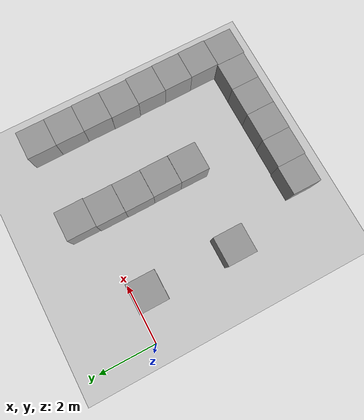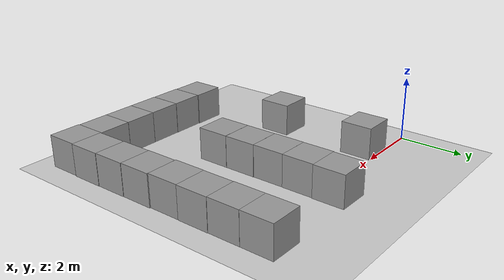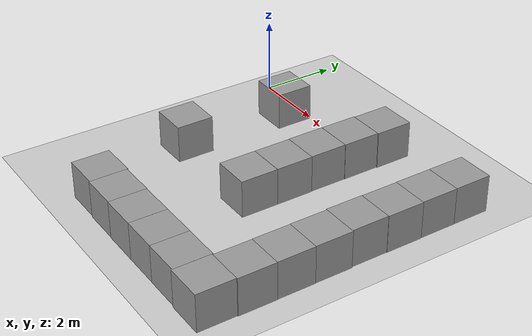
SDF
<sdf version="1.4">
 <world name="default">
  <model name="ground_plane">
   <static>1</static>
   <link name="link">
    <collision name="collision">
     <geometry><plane><normal>0 0 1</normal><size>100 100</size></plane></geometry>
     <surface><friction><ode><mu>100</mu><mu2>50</mu2></ode></friction></surface>
    </collision>
    <visual name="visual">
     <cast_shadows>0</cast_shadows>
     <geometry><plane><normal>0 0 1</normal><size>100 100</size></plane></geometry>
     <material>
      <script><uri>file://media/materials/scripts/gazebo.material</uri><name>Gazebo/Grey</name></script>
     </material>
    </visual>
    <velocity_decay><linear>0</linear><angular>0</angular></velocity_decay>
   </link>
  </model>
  <model name="unit_box_7">
   <pose>1.5402 -0.524001 0.5 0 -0 -0.000858</pose>
   <link name="link">
    <inertial>
     <mass>1</mass>
     <inertia><ixx>1</ixx><ixy>0</ixy><ixz>0</ixz><iyy>1</iyy><iyz>0</iyz><izz>1</izz></inertia>
    </inertial>
    <collision name="collision"><geometry><box><size>1 1 1</size></box></geometry></collision>
    <visual name="visual">
     <geometry><box><size>1 1 1</size></box></geometry>
     <material>
      <script><uri>file://media/materials/scripts/gazebo.material</uri><name>Gazebo/Grey</name></script>
     </material>
    </visual>
    <velocity_decay><linear>0</linear><angular>0</angular></velocity_decay>
   </link>
   <static>0</static>
  </model>
  <model name="unit_box_13">
   <pose>1.53224 -3.56458 0.5 0 0 -0.000476</pose>
   <link name="link">
    <inertial>
     <mass>1</mass>
     <inertia><ixx>1</ixx><ixy>0</ixy><ixz>0</ixz><iyy>1</iyy><iyz>0</iyz><izz>1</izz></inertia>
    </inertial>
    <collision name="collision"><geometry><box><size>1 1 1</size></box></geometry></collision>
    <visual name="visual">
     <geometry><box><size>1 1 1</size></box></geometry>
     <material>
      <script><uri>file://media/materials/scripts/gazebo.material</uri><name>Gazebo/Grey</name></script>
     </material>
    </visual>
    <velocity_decay><linear>0</linear><angular>0</angular></velocity_decay>
   </link>
   <static>0</static>
  </model>
  <model name="unit_box_38">
   <pose>4.53097 0.455261 0.5 0 -0 0.00101</pose>
   <link name="link">
    <inertial>
     <mass>1</mass>
     <inertia><ixx>1</ixx><ixy>0</ixy><ixz>0</ixz><iyy>1</iyy><iyz>0</iyz><izz>1</izz></inertia>
    </inertial>
    <collision name="collision"><geometry><box><size>1 1 1</size></box></geometry></collision>
    <visual name="visual">
     <geometry><box><size>1 1 1</size></box></geometry>
     <material>
      <script><uri>file://media/materials/scripts/gazebo.material</uri><name>Gazebo/Grey</name></script>
     </material>
    </visual>
    <velocity_decay><linear>0</linear><angular>0</angular></velocity_decay>
   </link>
   <static>0</static>
  </model>
  <model name="unit_box_39">
   <pose>4.50946 -0.544822 0.5 0 -0 0.001131</pose>
   <link name="link">
    <inertial>
     <mass>1</mass>
     <inertia><ixx>1</ixx><ixy>0</ixy><ixz>0</ixz><iyy>1</iyy><iyz>0</iyz><izz>1</izz></inertia>
    </inertial>
    <collision name="collision"><geometry><box><size>1 1 1</size></box></geometry></collision>
    <visual name="visual">
     <geometry><box><size>1 1 1</size></box></geometry>
     <material>
      <script><uri>file://media/materials/scripts/gazebo.material</uri><name>Gazebo/Grey</name></script>
     </material>
    </visual>
    <velocity_decay><linear>0</linear><angular>0</angular></velocity_decay>
   </link>
   <static>0</static>
  </model>
  <model name="unit_box_40">
   <pose>4.50411 -1.54523 0.5 0 -0 0.001935</pose>
   <link name="link">
    <inertial>
     <mass>1</mass>
     <inertia><ixx>1</ixx><ixy>0</ixy><ixz>0</ixz><iyy>1</iyy><iyz>0</iyz><izz>1</izz></inertia>
    </inertial>
    <collision name="collision"><geometry><box><size>1 1 1</size></box></geometry></collision>
    <visual name="visual">
     <geometry><box><size>1 1 1</size></box></geometry>
     <material>
      <script><uri>file://media/materials/scripts/gazebo.material</uri><name>Gazebo/Grey</name></script>
     </material>
    </visual>
    <velocity_decay><linear>0</linear><angular>0</angular></velocity_decay>
   </link>
   <static>0</static>
  </model>
  <model name="unit_box_41">
   <pose>4.51675 -2.54608 0.5 0 -0 0.003705</pose>
   <link name="link">
    <inertial>
     <mass>1</mass>
     <inertia><ixx>1</ixx><ixy>0</ixy><ixz>0</ixz><iyy>1</iyy><iyz>0</iyz><izz>1</izz></inertia>
    </inertial>
    <collision name="collision"><geometry><box><size>1 1 1</size></box></geometry></collision>
    <visual name="visual">
     <geometry><box><size>1 1 1</size></box></geometry>
     <material>
      <script><uri>file://media/materials/scripts/gazebo.material</uri><name>Gazebo/Grey</name></script>
     </material>
    </visual>
    <velocity_decay><linear>0</linear><angular>0</angular></velocity_decay>
   </link>
   <static>0</static>
  </model>
  <model name="unit_box_42">
   <pose>4.51838 -3.54803 0.5 0 -0 -0.000195</pose>
   <link name="link">
    <inertial>
     <mass>1</mass>
     <inertia><ixx>1</ixx><ixy>0</ixy><ixz>0</ixz><iyy>1</iyy><iyz>0</iyz><izz>1</izz></inertia>
    </inertial>
    <collision name="collision"><geometry><box><size>1 1 1</size></box></geometry></collision>
    <visual name="visual">
     <geometry><box><size>1 1 1</size></box></geometry>
     <material>
      <script><uri>file://media/materials/scripts/gazebo.material</uri><name>Gazebo/Grey</name></script>
     </material>
    </visual>
    <velocity_decay><linear>0</linear><angular>0</angular></velocity_decay>
   </link>
   <static>0</static>
  </model>
  <model name="unit_box_43">
   <pose>2.52884 -6.48279 0.5 -0 -0 -0.000433</pose>
   <link name="link">
    <inertial>
     <mass>1</mass>
     <inertia><ixx>1</ixx><ixy>0</ixy><ixz>0</ixz><iyy>1</iyy><iyz>0</iyz><izz>1</izz></inertia>
    </inertial>
    <collision name="collision"><geometry><box><size>1 1 1</size></box></geometry></collision>
    <visual name="visual">
     <geometry><box><size>1 1 1</size></box></geometry>
     <material>
      <script><uri>file://media/materials/scripts/gazebo.material</uri><name>Gazebo/Grey</name></script>
     </material>
    </visual>
    <velocity_decay><linear>0</linear><angular>0</angular></velocity_decay>
   </link>
   <static>0</static>
  </model>
  <model name="unit_box_44">
   <pose>3.52885 -6.50694 0.5 -0 -0 -0.00048</pose>
   <link name="link">
    <inertial>
     <mass>1</mass>
     <inertia><ixx>1</ixx><ixy>0</ixy><ixz>0</ixz><iyy>1</iyy><iyz>0</iyz><izz>1</izz></inertia>
    </inertial>
    <collision name="collision"><geometry><box><size>1 1 1</size></box></geometry></collision>
    <visual name="visual">
     <geometry><box><size>1 1 1</size></box></geometry>
     <material>
      <script><uri>file://media/materials/scripts/gazebo.material</uri><name>Gazebo/Grey</name></script>
     </material>
    </visual>
    <velocity_decay><linear>0</linear><angular>0</angular></velocity_decay>
   </link>
   <static>0</static>
  </model>
  <model name="unit_box_45">
   <pose>4.52886 -6.51639 0.5 0 0 -0.000511</pose>
   <link name="link">
    <inertial>
     <mass>1</mass>
     <inertia><ixx>1</ixx><ixy>0</ixy><ixz>0</ixz><iyy>1</iyy><iyz>0</iyz><izz>1</izz></inertia>
    </inertial>
    <collision name="collision"><geometry><box><size>1 1 1</size></box></geometry></collision>
    <visual name="visual">
     <geometry><box><size>1 1 1</size></box></geometry>
     <material>
      <script><uri>file://media/materials/scripts/gazebo.material</uri><name>Gazebo/Grey</name></script>
     </material>
    </visual>
    <velocity_decay><linear>0</linear><angular>0</angular></velocity_decay>
   </link>
   <static>0</static>
  </model>
  <model name="unit_box_46">
   <pose>5.52892 -6.51755 0.5 0 0 -0.000625</pose>
   <link name="link">
    <inertial>
     <mass>1</mass>
     <inertia><ixx>1</ixx><ixy>0</ixy><ixz>0</ixz><iyy>1</iyy><iyz>0</iyz><izz>1</izz></inertia>
    </inertial>
    <collision name="collision"><geometry><box><size>1 1 1</size></box></geometry></collision>
    <visual name="visual">
     <geometry><box><size>1 1 1</size></box></geometry>
     <material>
      <script><uri>file://media/materials/scripts/gazebo.material</uri><name>Gazebo/Grey</name></script>
     </material>
    </visual>
    <velocity_decay><linear>0</linear><angular>0</angular></velocity_decay>
   </link>
   <static>0</static>
  </model>
  <model name="unit_box_47">
   <pose>6.52892 -6.52181 0.5 0 -0 -0.000629</pose>
   <link name="link">
    <inertial>
     <mass>1</mass>
     <inertia><ixx>1</ixx><ixy>0</ixy><ixz>0</ixz><iyy>1</iyy><iyz>0</iyz><izz>1</izz></inertia>
    </inertial>
    <collision name="collision"><geometry><box><size>1 1 1</size></box></geometry></collision>
    <visual name="visual">
     <geometry><box><size>1 1 1</size></box></geometry>
     <material>
      <script><uri>file://media/materials/scripts/gazebo.material</uri><name>Gazebo/Grey</name></script>
     </material>
    </visual>
    <velocity_decay><linear>0</linear><angular>0</angular></velocity_decay>
   </link>
   <static>0</static>
  </model>
  <model name="unit_box_48">
   <pose>7.52919 -6.55151 0.5 -0 -0 -9.4e-05</pose>
   <link name="link">
    <inertial>
     <mass>1</mass>
     <inertia><ixx>1</ixx><ixy>0</ixy><ixz>0</ixz><iyy>1</iyy><iyz>0</iyz><izz>1</izz></inertia>
    </inertial>
    <collision name="collision"><geometry><box><size>1 1 1</size></box></geometry></collision>
    <visual name="visual">
     <geometry><box><size>1 1 1</size></box></geometry>
     <material>
      <script><uri>file://media/materials/scripts/gazebo.material</uri><name>Gazebo/Grey</name></script>
     </material>
    </visual>
    <velocity_decay><linear>0</linear><angular>0</angular></velocity_decay>
   </link>
   <static>0</static>
  </model>
  <model name="unit_box_49">
   <pose>7.54955 -5.55151 0.5 0 -0 -9.4e-05</pose>
   <link name="link">
    <inertial>
     <mass>1</mass>
     <inertia><ixx>1</ixx><ixy>0</ixy><ixz>0</ixz><iyy>1</iyy><iyz>0</iyz><izz>1</izz></inertia>
    </inertial>
    <collision name="collision"><geometry><box><size>1 1 1</size></box></geometry></collision>
    <visual name="visual">
     <geometry><box><size>1 1 1</size></box></geometry>
     <material>
      <script><uri>file://media/materials/scripts/gazebo.material</uri><name>Gazebo/Grey</name></script>
     </material>
    </visual>
    <velocity_decay><linear>0</linear><angular>0</angular></velocity_decay>
   </link>
   <static>0</static>
  </model>
  <model name="unit_box_50">
   <pose>7.53995 -4.55151 0.5 0 0 -9.5e-05</pose>
   <link name="link">
    <inertial>
     <mass>1</mass>
     <inertia><ixx>1</ixx><ixy>0</ixy><ixz>0</ixz><iyy>1</iyy><iyz>0</iyz><izz>1</izz></inertia>
    </inertial>
    <collision name="collision"><geometry><box><size>1 1 1</size></box></geometry></collision>
    <visual name="visual">
     <geometry><box><size>1 1 1</size></box></geometry>
     <material>
      <script><uri>file://media/materials/scripts/gazebo.material</uri><name>Gazebo/Grey</name></script>
     </material>
    </visual>
    <velocity_decay><linear>0</linear><angular>0</angular></velocity_decay>
   </link>
   <static>0</static>
  </model>
  <model name="unit_box_51">
   <pose>7.53003 -3.55146 0.5 0 0 -0.000182</pose>
   <link name="link">
    <inertial>
     <mass>1</mass>
     <inertia><ixx>1</ixx><ixy>0</ixy><ixz>0</ixz><iyy>1</iyy><iyz>0</iyz><izz>1</izz></inertia>
    </inertial>
    <collision name="collision"><geometry><box><size>1 1 1</size></box></geometry></collision>
    <visual name="visual">
     <geometry><box><size>1 1 1</size></box></geometry>
     <material>
      <script><uri>file://media/materials/scripts/gazebo.material</uri><name>Gazebo/Grey</name></script>
     </material>
    </visual>
    <velocity_decay><linear>0</linear><angular>0</angular></velocity_decay>
   </link>
   <static>0</static>
  </model>
  <model name="unit_box_52">
   <pose>7.50073 -2.55141 0.5 0 0 -0.000277</pose>
   <link name="link">
    <inertial>
     <mass>1</mass>
     <inertia><ixx>1</ixx><ixy>0</ixy><ixz>0</ixz><iyy>1</iyy><iyz>0</iyz><izz>1</izz></inertia>
    </inertial>
    <collision name="collision"><geometry><box><size>1 1 1</size></box></geometry></collision>
    <visual name="visual">
     <geometry><box><size>1 1 1</size></box></geometry>
     <material>
      <script><uri>file://media/materials/scripts/gazebo.material</uri><name>Gazebo/Grey</name></script>
     </material>
    </visual>
    <velocity_decay><linear>0</linear><angular>0</angular></velocity_decay>
   </link>
   <static>0</static>
  </model>
  <model name="unit_box_53">
   <pose>7.50935 -1.5514 0.5 -0 -0 -0.000301</pose>
   <link name="link">
    <inertial>
     <mass>1</mass>
     <inertia><ixx>1</ixx><ixy>0</ixy><ixz>0</ixz><iyy>1</iyy><iyz>0</iyz><izz>1</izz></inertia>
    </inertial>
    <collision name="collision"><geometry><box><size>1 1 1</size></box></geometry></collision>
    <visual name="visual">
     <geometry><box><size>1 1 1</size></box></geometry>
     <material>
      <script><uri>file://media/materials/scripts/gazebo.material</uri><name>Gazebo/Grey</name></script>
     </material>
    </visual>
    <velocity_decay><linear>0</linear><angular>0</angular></velocity_decay>
   </link>
   <static>0</static>
  </model>
  <model name="unit_box_54">
   <pose>7.49965 -0.551361 0.5 0 0 -0.000374</pose>
   <link name="link">
    <inertial>
     <mass>1</mass>
     <inertia><ixx>1</ixx><ixy>0</ixy><ixz>0</ixz><iyy>1</iyy><iyz>0</iyz><izz>1</izz></inertia>
    </inertial>
    <collision name="collision"><geometry><box><size>1 1 1</size></box></geometry></collision>
    <visual name="visual">
     <geometry><box><size>1 1 1</size></box></geometry>
     <material>
      <script><uri>file://media/materials/scripts/gazebo.material</uri><name>Gazebo/Grey</name></script>
     </material>
    </visual>
    <velocity_decay><linear>0</linear><angular>0</angular></velocity_decay>
   </link>
   <static>0</static>
  </model>
  <model name="unit_box_84">
   <pose>7.49697 0.448676 0.5 0 0 -0.000447</pose>
   <link name="link">
    <inertial>
     <mass>1</mass>
     <inertia><ixx>1</ixx><ixy>0</ixy><ixz>0</ixz><iyy>1</iyy><iyz>0</iyz><izz>1</izz></inertia>
    </inertial>
    <collision name="collision"><geometry><box><size>1 1 1</size></box></geometry></collision>
    <visual name="visual">
     <geometry><box><size>1 1 1</size></box></geometry>
     <material>
      <script><uri>file://media/materials/scripts/gazebo.material</uri><name>Gazebo/Grey</name></script>
     </material>
    </visual>
    <velocity_decay><linear>0</linear><angular>0</angular></velocity_decay>
   </link>
   <static>0</static>
  </model>
 </world>
</sdf>
